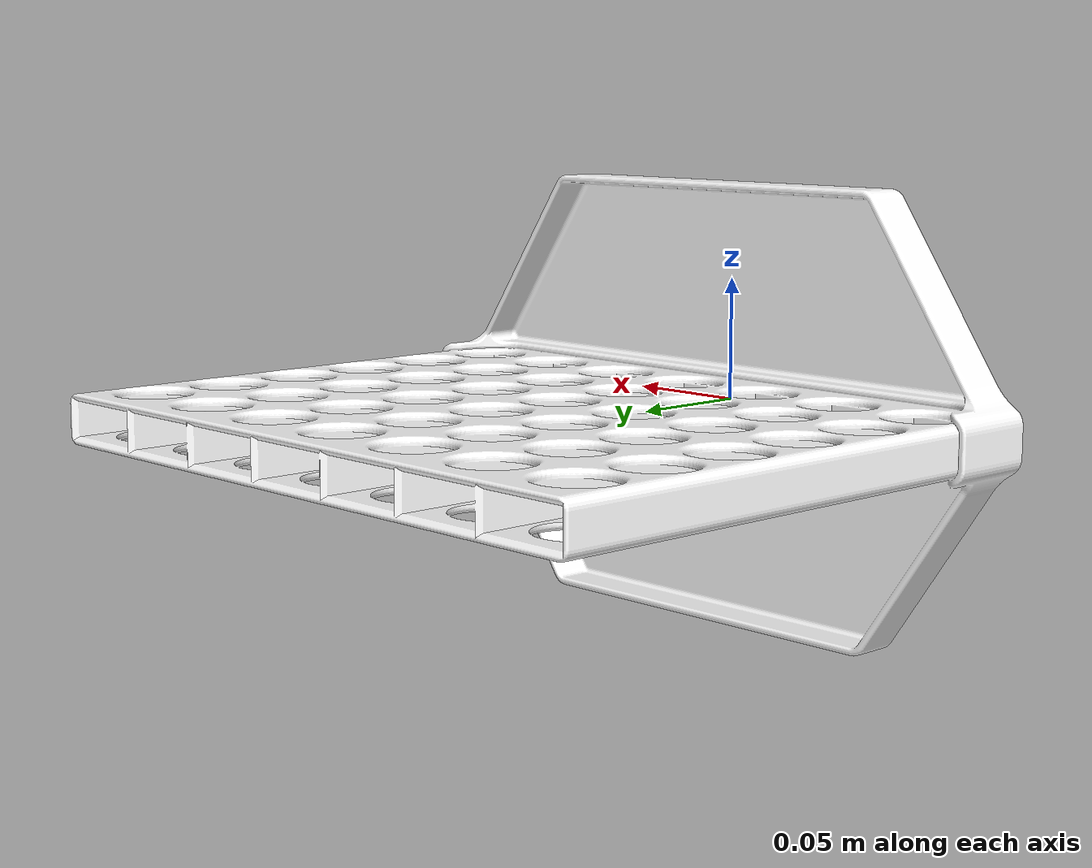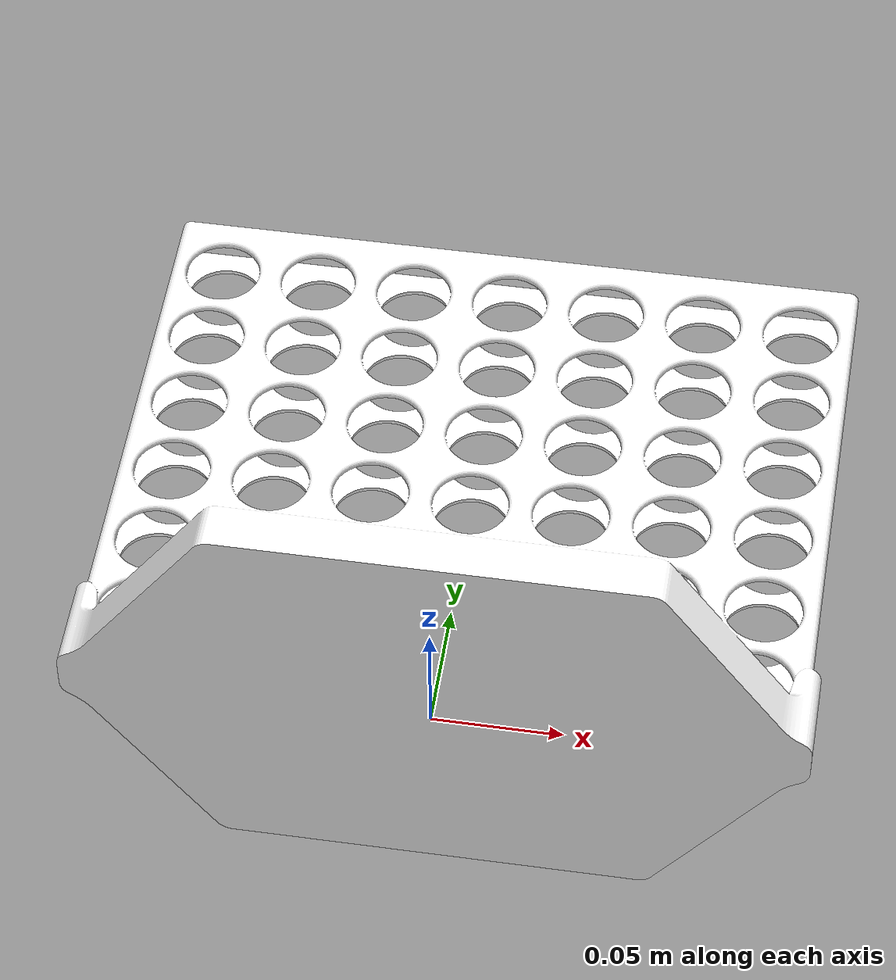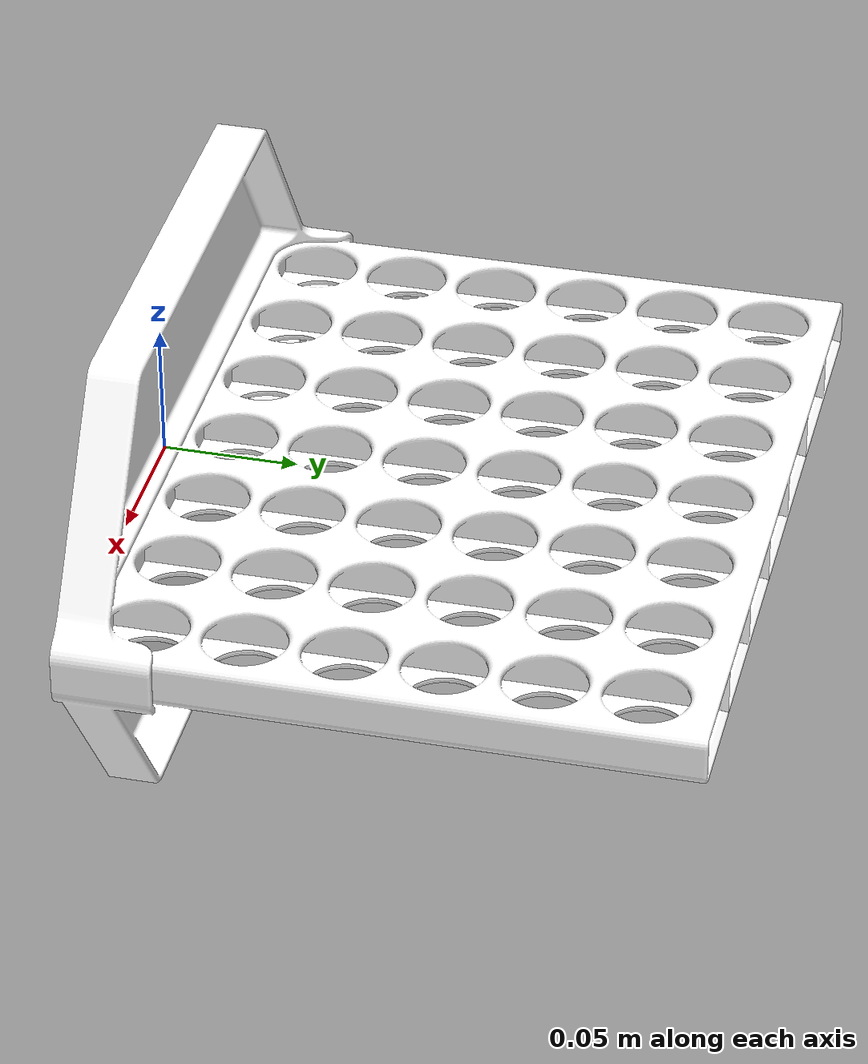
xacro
<?xml version="1.0"?>
<robot name="connect4" xmlns:xacro="http://www.ros.org/wiki/xacro">

  <link name="board">
    <visual>
      <geometry>
        <mesh filename="package://vw-assign1-2025-parol6-static-pkg/meshes/game.STL" scale="0.0001 0.0001 0.0001"/>
      </geometry>
      <material name="">
        <color rgba="1 1 1 1" />
      </material>
    </visual>
    <collision>
      <geometry>
        <mesh filename="package://vw-assign1-2025-parol6-static-pkg/meshes/game.STL" scale="0.0001 0.0001 0.0001"/>
      </geometry>
    </collision>
  </link>
</robot>
